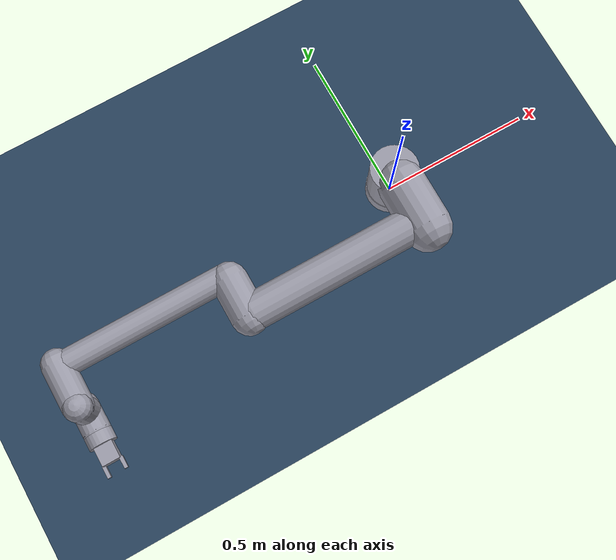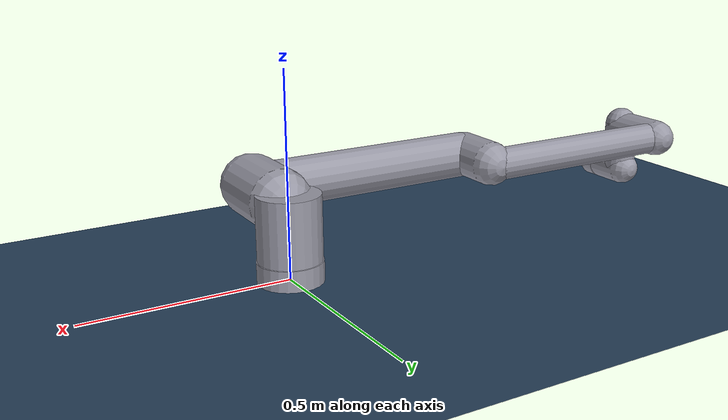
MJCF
<mujoco model="ur10e scene (train)">
  <include file="ur10e_train.xml"/>

  <visual>
    <headlight diffuse="0.6 0.6 0.6" ambient="0.3 0.3 0.3" specular="0 0 0"/>
    <rgba haze="0.15 0.25 0.35 1"/>
    <global azimuth="120" elevation="-20"/>
  </visual>

  <asset>
    <texture type="skybox" builtin="gradient" rgb1="0.3 0.5 0.7" rgb2="0 0 0" width="512" height="3072"/>
    <texture type="2d" name="groundplane" builtin="checker" mark="edge" rgb1="0.2 0.3 0.4" rgb2="0.1 0.2 0.3"
      markrgb="0.8 0.8 0.8" width="300" height="300"/>
    <material name="groundplane" texture="groundplane" texuniform="true" texrepeat="5 5" reflectance="0.2"/>
  </asset>

  <worldbody>
    <light pos="0 0 1.5" dir="0 0 -1" directional="true"/>
    <geom name="floor" size="0 0 0.05" type="plane" material="groundplane" contype="1" conaffinity="1"/>
  </worldbody>
</mujoco>

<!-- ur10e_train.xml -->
<mujoco model="ur10e_with_gripper_train">
  <compiler angle="radian" autolimits="true"/>

  <option integrator="implicitfast"/>

  <default>
    <default class="ur10e">
      <material specular="0.5" shininess="0.25"/>
      <joint axis="0 1 0" range="-6.28319 6.28319" armature="0.1"/>
      <position ctrlrange="-6.2831 6.2831"/>
      <general biastype="affine" ctrlrange="-6.2831 6.2831" gainprm="5000" biasprm="0 -5000 -500"/>
      <default class="size4">
        <joint damping="10"/>
        <general forcerange="-330 330"/>
      </default>
      <default class="size3">
        <joint damping="5"/>
        <general forcerange="-150 150"/>
        <default class="size3_limited">
          <joint range="-3.1415 3.1415"/>
          <general ctrlrange="-3.1415 3.1415"/>
        </default>
      </default>
      <default class="size2">
        <joint damping="2"/>
        <general forcerange="-56 56"/>
      </default>
      <!-- visual == collision di versi training: satu set primitif dipakai untuk keduanya -->
      <default class="link_geom">
        <geom type="capsule" group="1" contype="1" conaffinity="1" rgba="0.6 0.6 0.65 1"/>
        <default class="eef_geom">
          <geom type="cylinder"/>
        </default>
      </default>
      <site size="0.001" rgba="0.5 0.5 0.5 0.3" group="4"/>
    </default>
  </default>

  <asset>
    <material class="ur10e" name="black" rgba="0.033 0.033 0.033 1"/>
    <material class="ur10e" name="jointgray" rgba="0.278 0.278 0.278 1"/>
    <material class="ur10e" name="linkgray" rgba="0.82 0.82 0.82 1"/>
    <material class="ur10e" name="urblue" rgba="0.49 0.678 0.8 1"/>
  </asset>

  <worldbody>
    <light name="spotlight" mode="targetbodycom" target="wrist_2_link" pos="0 -1 2"/>

    <body name="base" gravcomp="1" quat="0 0 0 -1" childclass="ur10e">
      <inertial mass="4.0" pos="0 0 0" diaginertia="0.0061063308908 0.0061063308908 0.01125"/>
      <geom class="link_geom" material="linkgray" type="cylinder" size="0.08 0.05" pos="0 0 0"/>

      <body name="shoulder_link" gravcomp="1" pos="0 0 0.181">
        <inertial pos="0 0 0" mass="7.778" diaginertia="0.0314743 0.0314743 0.0218756"/>
        <joint name="shoulder_pan_joint" class="size4" axis="0 0 1"/>
        <geom class="link_geom" type="cylinder" material="urblue" size="0.078 0.08" pos="0 0 -0.05"/>

        <body name="upper_arm_link" gravcomp="1" pos="0 0.176 0" quat="1 0 1 0">
          <inertial pos="0 0 0.3065" mass="12.93" diaginertia="0.423074 0.423074 0.0363656"/>
          <joint name="shoulder_lift_joint" class="size4"/>
          <geom class="link_geom" material="urblue" pos="0 -0.05 0" quat="1 1 0 0" size="0.078 0.08"/>
          <geom class="link_geom" material="linkgray" size="0.06 0.3" pos="0 0 0.3"/>

          <body name="forearm_link" gravcomp="1" pos="0 -0.137 0.613">
            <inertial pos="0 0 0.2855" mass="3.87" diaginertia="0.11059 0.11059 0.0108844"/>
            <joint name="elbow_joint" class="size3_limited"/>
            <geom class="link_geom" material="urblue" pos="0 0.08 0" quat="1 1 0 0" size="0.058 0.065"/>
            <geom class="link_geom" material="linkgray" size="0.043 0.28" pos="0 0 0.29"/>

            <body name="wrist_1_link" gravcomp="1" pos="0 0 0.571" quat="1 0 1 0">
              <inertial pos="0 0.135 0" quat="0.5 0.5 -0.5 0.5" mass="1.96"
                diaginertia="0.0055125 0.00510825 0.00510825"/>
              <joint name="wrist_1_joint" class="size2"/>
              <geom class="link_geom" material="black" pos="0 0.06 0" quat="1 1 0 0" size="0.05 0.07"/>

              <body name="wrist_2_link" gravcomp="1" pos="0 0.135 0">
                <inertial pos="0 0 0.12" quat="0.5 0.5 -0.5 0.5" mass="1.96"
                  diaginertia="0.0055125 0.00510825 0.00510825"/>
                <joint name="wrist_2_joint" axis="0 0 1" class="size2"/>
                <geom class="link_geom" material="black" size="0.046 0.065" pos="0 0 0.05"/>
                <geom class="link_geom" material="black" pos="0 0.028 0.12" quat="1 1 0 0" size="0.046 0.043"/>

                <!-- JOINT KE-6 (WRIST 3 / END EFFECTOR) -->
                <body name="wrist_3_link" gravcomp="1" pos="0 0 0.12">
                  <inertial pos="0 0.092 0" quat="0 1 -1 0" mass="0.202"
                    diaginertia="0.000204525 0.000144346 0.000144346"/>
                  <joint name="wrist_3_joint" class="size2"/>
                  <geom class="eef_geom" material="linkgray" pos="0 0.097 0" quat="1 1 0 0" size="0.046 0.02"/>
                  <site name="attachment_site" pos="0 0.1 0" quat="-1 1 0 0"/>

                  <!-- GRIPPER ASSEMBLY (primitif, estimasi bounding box) -->
                  <body name="Servo-v1" gravcomp="1" pos="0 0.1 0" quat="-1 1 0 0">
                    <inertial mass="3.424" pos="0 0 0.037" fullinertia="0.0027 0.0042 0.0035 0 0 0"/>
                    <geom class="link_geom" type="box" material="black" size="0.03 0.025 0.04" pos="0 0 0.037"/>
                    <!-- titik referensi TCP (tool center point) untuk target pose IK -->
                    <site name="tcp_site" pos="0 0 0.10" size="0.004" rgba="1 0 0 1"/>

                    <!-- Finger Kanan -->
                    <body name="slide-right-v3" gravcomp="1" pos="-0.0223 -0.0178 0.0739" euler="0 0 3.14159">
                      <inertial mass="0.210" pos="0.007 -0.0075 0.020" fullinertia="0.0001 0.0001 0.00005 0 0 0"/>
                      <joint name="Servo-v1_Slider-1" type="slide" axis="1 0 0" range="0 0.025" damping="0.5"/>
                      <geom class="link_geom" type="box" material="jointgray" size="0.006 0.008 0.02" pos="0.007 -0.0075 0.020"/>
                    </body>

                    <!-- Finger Kiri -->
                    <body name="slide-left-v1" gravcomp="1" pos="0.0242 0.0178 0.0739" euler="0 0 0">
                      <inertial mass="0.210" pos="0.007 -0.0075 0.020" fullinertia="0.0001 0.0001 0.00005 0 0 0"/>
                      <joint name="Servo-v1_Slider-2" type="slide" axis="1 0 0" range="0 0.025" damping="0.5"/>
                      <geom class="link_geom" type="box" material="jointgray" size="0.006 0.008 0.02" pos="0.007 -0.0075 0.020"/>
                    </body>
                  </body>

                </body>
              </body>
            </body>
          </body>
        </body>
      </body>
    </body>
  </worldbody>

  <!-- Sinkronisasi Kaku & Responsif Antar Kedua Joint Capit -->
  <equality>
    <joint joint1="Servo-v1_Slider-1" joint2="Servo-v1_Slider-2" polycoef="0 1 0 0 0" solref="0.002 1" solimp="0.95 0.99 0.001 0.5 2"/>
  </equality>

  <actuator>
    <general class="size4" name="shoulder_pan" joint="shoulder_pan_joint"/>
    <general class="size4" name="shoulder_lift" joint="shoulder_lift_joint"/>
    <general class="size3_limited" name="elbow" joint="elbow_joint"/>
    <general class="size2" name="wrist_1" joint="wrist_1_joint"/>
    <general class="size2" name="wrist_2" joint="wrist_2_joint"/>
    <general class="size2" name="wrist_3" joint="wrist_3_joint"/>

    <!-- Kontrol Utama Gripper -->
    <position name="gripper_actuator" joint="Servo-v1_Slider-1" ctrlrange="-2 0" kp="300"/>
  </actuator>

  <keyframe>
    <key name="home" qpos="-1.5708 -1.5708 1.5708 -1.5708 -1.5708 0 0 0" ctrl="-1.5708 -1.5708 1.5708 -1.5708 -1.5708 0 0"/>
  </keyframe>
</mujoco>
